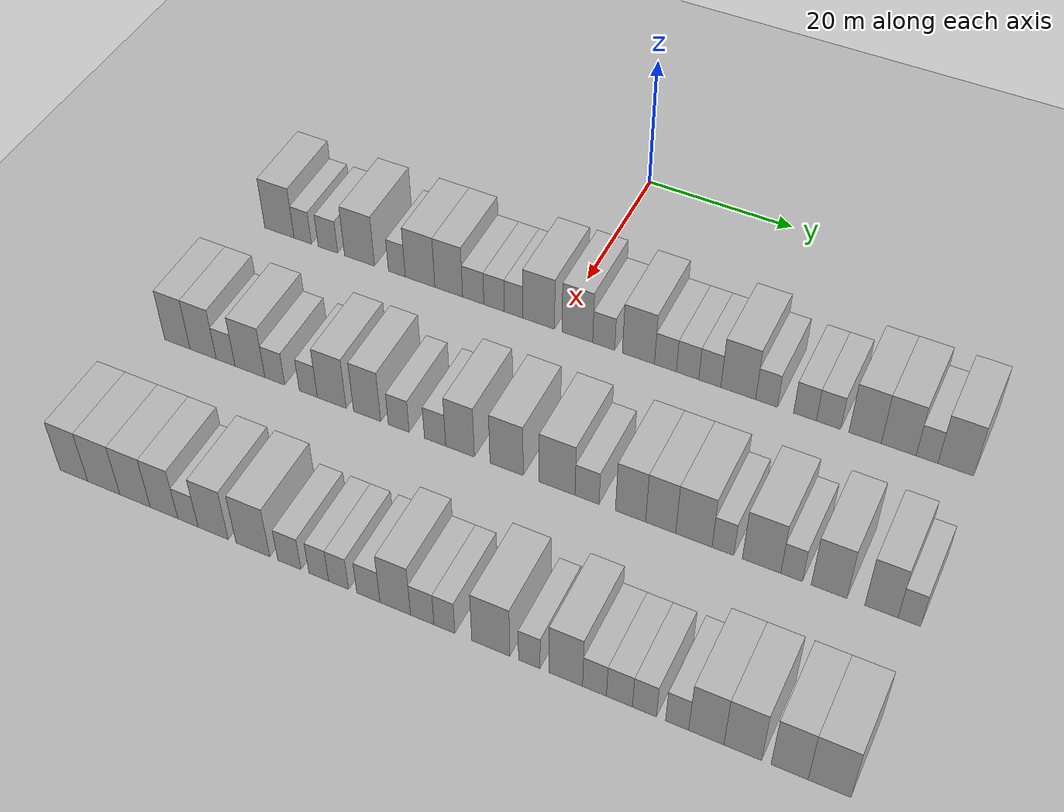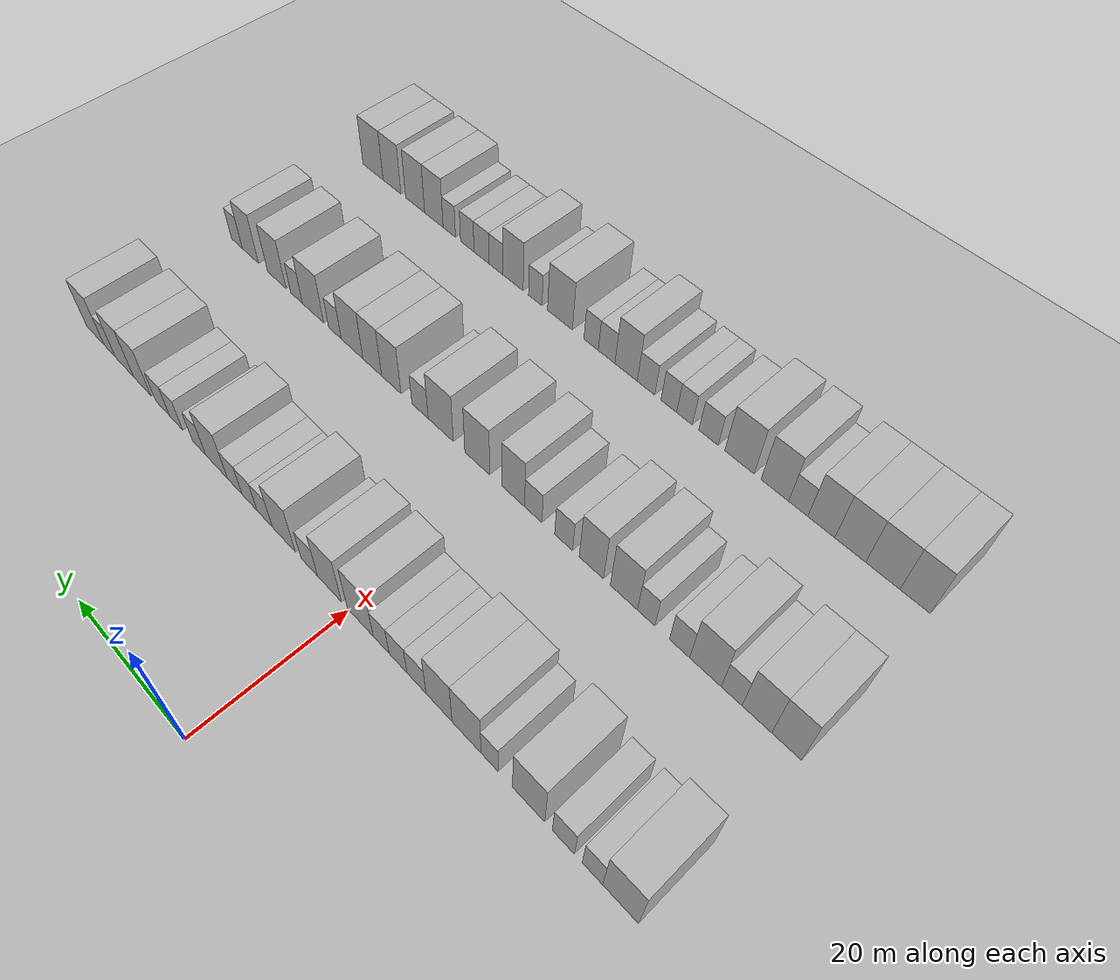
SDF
<sdf version="1.6">
 <world name="default">
  <include><name>ground_plane_1</name><uri>model://HANNAS_ground_plane</uri></include>
  <include>
   <name>ground_plane_2</name>
   <uri>model://HANNAS_ground_plane</uri>
   <pose>100 0 0  0 0 0</pose>
  </include>
  <model name="building_47">
   <static>1</static>
   <pose>25.0000 -39.0873 0 0.000000 0.000000 0.000000</pose>
   <link name="link">
    <pose>0 0 4.50 0 0 0</pose>
    <collision name="collision"><geometry><box><size>10.0000 4.3824 9.0000</size></box></geometry></collision>
    <visual name="visual">
     <cast_shadows>0</cast_shadows>
     <geometry><box><size>10.0000 4.3824 9.0000</size></box></geometry>
     <material>
      <script>
       <uri>model://HANNAS_wall/materials/scripts</uri>
       <uri>model://HANNAS_wall/materials/textures</uri>
       <name>vrc/HANNAS_wall</name>
      </script>
     </material>
    </visual>
   </link>
  </model>
  <model name="building_48">
   <static>1</static>
   <pose>25.0000 -35.6104 0 0.000000 0.000000 0.000000</pose>
   <link name="link">
    <pose>0 0 3.00 0 0 0</pose>
    <collision name="collision"><geometry><box><size>10.0000 2.5714 6.0000</size></box></geometry></collision>
    <visual name="visual">
     <cast_shadows>0</cast_shadows>
     <geometry><box><size>10.0000 2.5714 6.0000</size></box></geometry>
     <material>
      <script>
       <uri>model://HANNAS_wall/materials/scripts</uri>
       <uri>model://HANNAS_wall/materials/textures</uri>
       <name>vrc/HANNAS_wall</name>
      </script>
     </material>
    </visual>
   </link>
  </model>
  <model name="building_49">
   <static>1</static>
   <pose>25.0000 -31.8864 0 0.000000 0.000000 0.000000</pose>
   <link name="link">
    <pose>0 0 3.00 0 0 0</pose>
    <collision name="collision"><geometry><box><size>10.0000 2.8766 6.0000</size></box></geometry></collision>
    <visual name="visual">
     <cast_shadows>0</cast_shadows>
     <geometry><box><size>10.0000 2.8766 6.0000</size></box></geometry>
     <material>
      <script>
       <uri>model://HANNAS_wall/materials/scripts</uri>
       <uri>model://HANNAS_wall/materials/textures</uri>
       <name>vrc/HANNAS_wall</name>
      </script>
     </material>
    </visual>
   </link>
  </model>
  <model name="building_50">
   <static>1</static>
   <pose>25.0000 -27.2684 0 0.000000 0.000000 0.000000</pose>
   <link name="link">
    <pose>0 0 4.50 0 0 0</pose>
    <collision name="collision"><geometry><box><size>10.0000 4.3595 9.0000</size></box></geometry></collision>
    <visual name="visual">
     <cast_shadows>0</cast_shadows>
     <geometry><box><size>10.0000 4.3595 9.0000</size></box></geometry>
     <material>
      <script>
       <uri>model://HANNAS_wall/materials/scripts</uri>
       <uri>model://HANNAS_wall/materials/textures</uri>
       <name>vrc/HANNAS_wall</name>
      </script>
     </material>
    </visual>
   </link>
  </model>
  <model name="building_51">
   <static>1</static>
   <pose>25.0000 -21.8857 0 0.000000 0.000000 0.000000</pose>
   <link name="link">
    <pose>0 0 3.00 0 0 0</pose>
    <collision name="collision"><geometry><box><size>10.0000 2.4059 6.0000</size></box></geometry></collision>
    <visual name="visual">
     <cast_shadows>0</cast_shadows>
     <geometry><box><size>10.0000 2.4059 6.0000</size></box></geometry>
     <material>
      <script>
       <uri>model://HANNAS_wall/materials/scripts</uri>
       <uri>model://HANNAS_wall/materials/textures</uri>
       <name>vrc/HANNAS_wall</name>
      </script>
     </material>
    </visual>
   </link>
  </model>
  <model name="building_52">
   <static>1</static>
   <pose>25.0000 -18.5811 0 0.000000 0.000000 0.000000</pose>
   <link name="link">
    <pose>0 0 4.50 0 0 0</pose>
    <collision name="collision"><geometry><box><size>10.0000 4.2033 9.0000</size></box></geometry></collision>
    <visual name="visual">
     <cast_shadows>0</cast_shadows>
     <geometry><box><size>10.0000 4.2033 9.0000</size></box></geometry>
     <material>
      <script>
       <uri>model://HANNAS_wall/materials/scripts</uri>
       <uri>model://HANNAS_wall/materials/textures</uri>
       <name>vrc/HANNAS_wall</name>
      </script>
     </material>
    </visual>
   </link>
  </model>
  <model name="building_53">
   <static>1</static>
   <pose>25.0000 -14.5283 0 0.000000 0.000000 0.000000</pose>
   <link name="link">
    <pose>0 0 4.50 0 0 0</pose>
    <collision name="collision"><geometry><box><size>10.0000 3.9023 9.0000</size></box></geometry></collision>
    <visual name="visual">
     <cast_shadows>0</cast_shadows>
     <geometry><box><size>10.0000 3.9023 9.0000</size></box></geometry>
     <material>
      <script>
       <uri>model://HANNAS_wall/materials/scripts</uri>
       <uri>model://HANNAS_wall/materials/textures</uri>
       <name>vrc/HANNAS_wall</name>
      </script>
     </material>
    </visual>
   </link>
  </model>
  <model name="building_54">
   <static>1</static>
   <pose>25.0000 -11.1028 0 0.000000 0.000000 0.000000</pose>
   <link name="link">
    <pose>0 0 3.00 0 0 0</pose>
    <collision name="collision"><geometry><box><size>10.0000 2.9488 6.0000</size></box></geometry></collision>
    <visual name="visual">
     <cast_shadows>0</cast_shadows>
     <geometry><box><size>10.0000 2.9488 6.0000</size></box></geometry>
     <material>
      <script>
       <uri>model://HANNAS_wall/materials/scripts</uri>
       <uri>model://HANNAS_wall/materials/textures</uri>
       <name>vrc/HANNAS_wall</name>
      </script>
     </material>
    </visual>
   </link>
  </model>
  <model name="building_55">
   <static>1</static>
   <pose>25.0000 -8.2130 0 0.000000 0.000000 0.000000</pose>
   <link name="link">
    <pose>0 0 3.00 0 0 0</pose>
    <collision name="collision"><geometry><box><size>10.0000 2.8308 6.0000</size></box></geometry></collision>
    <visual name="visual">
     <cast_shadows>0</cast_shadows>
     <geometry><box><size>10.0000 2.8308 6.0000</size></box></geometry>
     <material>
      <script>
       <uri>model://HANNAS_wall/materials/scripts</uri>
       <uri>model://HANNAS_wall/materials/textures</uri>
       <name>vrc/HANNAS_wall</name>
      </script>
     </material>
    </visual>
   </link>
  </model>
  <model name="building_56">
   <static>1</static>
   <pose>25.0000 -5.5200 0 0.000000 0.000000 0.000000</pose>
   <link name="link">
    <pose>0 0 3.00 0 0 0</pose>
    <collision name="collision"><geometry><box><size>10.0000 2.5552 6.0000</size></box></geometry></collision>
    <visual name="visual">
     <cast_shadows>0</cast_shadows>
     <geometry><box><size>10.0000 2.5552 6.0000</size></box></geometry>
     <material>
      <script>
       <uri>model://HANNAS_wall/materials/scripts</uri>
       <uri>model://HANNAS_wall/materials/textures</uri>
       <name>vrc/HANNAS_wall</name>
      </script>
     </material>
    </visual>
   </link>
  </model>
  <model name="building_57">
   <static>1</static>
   <pose>25.0000 -2.1061 0 0.000000 0.000000 0.000000</pose>
   <link name="link">
    <pose>0 0 4.50 0 0 0</pose>
    <collision name="collision"><geometry><box><size>10.0000 4.2726 9.0000</size></box></geometry></collision>
    <visual name="visual">
     <cast_shadows>0</cast_shadows>
     <geometry><box><size>10.0000 4.2726 9.0000</size></box></geometry>
     <material>
      <script>
       <uri>model://HANNAS_wall/materials/scripts</uri>
       <uri>model://HANNAS_wall/materials/textures</uri>
       <name>vrc/HANNAS_wall</name>
      </script>
     </material>
    </visual>
   </link>
  </model>
  <model name="building_58">
   <static>1</static>
   <pose>25.0000 3.0901 0 0.000000 0.000000 0.000000</pose>
   <link name="link">
    <pose>0 0 4.50 0 0 0</pose>
    <collision name="collision"><geometry><box><size>10.0000 4.1197 9.0000</size></box></geometry></collision>
    <visual name="visual">
     <cast_shadows>0</cast_shadows>
     <geometry><box><size>10.0000 4.1197 9.0000</size></box></geometry>
     <material>
      <script>
       <uri>model://HANNAS_wall/materials/scripts</uri>
       <uri>model://HANNAS_wall/materials/textures</uri>
       <name>vrc/HANNAS_wall</name>
      </script>
     </material>
    </visual>
   </link>
  </model>
  <model name="building_59">
   <static>1</static>
   <pose>25.0000 6.6092 0 0.000000 0.000000 0.000000</pose>
   <link name="link">
    <pose>0 0 3.00 0 0 0</pose>
    <collision name="collision"><geometry><box><size>10.0000 2.9186 6.0000</size></box></geometry></collision>
    <visual name="visual">
     <cast_shadows>0</cast_shadows>
     <geometry><box><size>10.0000 2.9186 6.0000</size></box></geometry>
     <material>
      <script>
       <uri>model://HANNAS_wall/materials/scripts</uri>
       <uri>model://HANNAS_wall/materials/textures</uri>
       <name>vrc/HANNAS_wall</name>
      </script>
     </material>
    </visual>
   </link>
  </model>
  <model name="building_60">
   <static>1</static>
   <pose>25.0000 11.1703 0 0.000000 0.000000 0.000000</pose>
   <link name="link">
    <pose>0 0 4.50 0 0 0</pose>
    <collision name="collision"><geometry><box><size>10.0000 4.2036 9.0000</size></box></geometry></collision>
    <visual name="visual">
     <cast_shadows>0</cast_shadows>
     <geometry><box><size>10.0000 4.2036 9.0000</size></box></geometry>
     <material>
      <script>
       <uri>model://HANNAS_wall/materials/scripts</uri>
       <uri>model://HANNAS_wall/materials/textures</uri>
       <name>vrc/HANNAS_wall</name>
      </script>
     </material>
    </visual>
   </link>
  </model>
  <model name="building_61">
   <static>1</static>
   <pose>25.0000 14.6912 0 0.000000 0.000000 0.000000</pose>
   <link name="link">
    <pose>0 0 3.00 0 0 0</pose>
    <collision name="collision"><geometry><box><size>10.0000 2.8382 6.0000</size></box></geometry></collision>
    <visual name="visual">
     <cast_shadows>0</cast_shadows>
     <geometry><box><size>10.0000 2.8382 6.0000</size></box></geometry>
     <material>
      <script>
       <uri>model://HANNAS_wall/materials/scripts</uri>
       <uri>model://HANNAS_wall/materials/textures</uri>
       <name>vrc/HANNAS_wall</name>
      </script>
     </material>
    </visual>
   </link>
  </model>
  <model name="building_62">
   <static>1</static>
   <pose>25.0000 17.5471 0 0.000000 0.000000 0.000000</pose>
   <link name="link">
    <pose>0 0 3.00 0 0 0</pose>
    <collision name="collision"><geometry><box><size>10.0000 2.8736 6.0000</size></box></geometry></collision>
    <visual name="visual">
     <cast_shadows>0</cast_shadows>
     <geometry><box><size>10.0000 2.8736 6.0000</size></box></geometry>
     <material>
      <script>
       <uri>model://HANNAS_wall/materials/scripts</uri>
       <uri>model://HANNAS_wall/materials/textures</uri>
       <name>vrc/HANNAS_wall</name>
      </script>
     </material>
    </visual>
   </link>
  </model>
  <model name="building_63">
   <static>1</static>
   <pose>25.0000 20.3977 0 0.000000 0.000000 0.000000</pose>
   <link name="link">
    <pose>0 0 3.00 0 0 0</pose>
    <collision name="collision"><geometry><box><size>10.0000 2.8276 6.0000</size></box></geometry></collision>
    <visual name="visual">
     <cast_shadows>0</cast_shadows>
     <geometry><box><size>10.0000 2.8276 6.0000</size></box></geometry>
     <material>
      <script>
       <uri>model://HANNAS_wall/materials/scripts</uri>
       <uri>model://HANNAS_wall/materials/textures</uri>
       <name>vrc/HANNAS_wall</name>
      </script>
     </material>
    </visual>
   </link>
  </model>
  <model name="building_64">
   <static>1</static>
   <pose>25.0000 24.0078 0 0.000000 0.000000 0.000000</pose>
   <link name="link">
    <pose>0 0 4.50 0 0 0</pose>
    <collision name="collision"><geometry><box><size>10.0000 4.3927 9.0000</size></box></geometry></collision>
    <visual name="visual">
     <cast_shadows>0</cast_shadows>
     <geometry><box><size>10.0000 4.3927 9.0000</size></box></geometry>
     <material>
      <script>
       <uri>model://HANNAS_wall/materials/scripts</uri>
       <uri>model://HANNAS_wall/materials/textures</uri>
       <name>vrc/HANNAS_wall</name>
      </script>
     </material>
    </visual>
   </link>
  </model>
  <model name="building_65">
   <static>1</static>
   <pose>25.0000 27.5665 0 0.000000 0.000000 0.000000</pose>
   <link name="link">
    <pose>0 0 3.00 0 0 0</pose>
    <collision name="collision"><geometry><box><size>10.0000 2.7247 6.0000</size></box></geometry></collision>
    <visual name="visual">
     <cast_shadows>0</cast_shadows>
     <geometry><box><size>10.0000 2.7247 6.0000</size></box></geometry>
     <material>
      <script>
       <uri>model://HANNAS_wall/materials/scripts</uri>
       <uri>model://HANNAS_wall/materials/textures</uri>
       <name>vrc/HANNAS_wall</name>
      </script>
     </material>
    </visual>
   </link>
  </model>
  <model name="building_66">
   <static>1</static>
   <pose>25.0000 32.3372 0 0.000000 0.000000 0.000000</pose>
   <link name="link">
    <pose>0 0 3.00 0 0 0</pose>
    <collision name="collision"><geometry><box><size>10.0000 2.8166 6.0000</size></box></geometry></collision>
    <visual name="visual">
     <cast_shadows>0</cast_shadows>
     <geometry><box><size>10.0000 2.8166 6.0000</size></box></geometry>
     <material>
      <script>
       <uri>model://HANNAS_wall/materials/scripts</uri>
       <uri>model://HANNAS_wall/materials/textures</uri>
       <name>vrc/HANNAS_wall</name>
      </script>
     </material>
    </visual>
   </link>
  </model>
  <model name="building_67">
   <static>1</static>
   <pose>25.0000 35.2324 0 0.000000 0.000000 0.000000</pose>
   <link name="link">
    <pose>0 0 3.00 0 0 0</pose>
    <collision name="collision"><geometry><box><size>10.0000 2.9739 6.0000</size></box></geometry></collision>
    <visual name="visual">
     <cast_shadows>0</cast_shadows>
     <geometry><box><size>10.0000 2.9739 6.0000</size></box></geometry>
     <material>
      <script>
       <uri>model://HANNAS_wall/materials/scripts</uri>
       <uri>model://HANNAS_wall/materials/textures</uri>
       <name>vrc/HANNAS_wall</name>
      </script>
     </material>
    </visual>
   </link>
  </model>
  <model name="building_68">
   <static>1</static>
   <pose>25.0000 39.6657 0 0.000000 0.000000 0.000000</pose>
   <link name="link">
    <pose>0 0 4.50 0 0 0</pose>
    <collision name="collision"><geometry><box><size>10.0000 3.8926 9.0000</size></box></geometry></collision>
    <visual name="visual">
     <cast_shadows>0</cast_shadows>
     <geometry><box><size>10.0000 3.8926 9.0000</size></box></geometry>
     <material>
      <script>
       <uri>model://HANNAS_wall/materials/scripts</uri>
       <uri>model://HANNAS_wall/materials/textures</uri>
       <name>vrc/HANNAS_wall</name>
      </script>
     </material>
    </visual>
   </link>
  </model>
  <model name="building_69">
   <static>1</static>
   <pose>25.0000 43.6970 0 0.000000 0.000000 0.000000</pose>
   <link name="link">
    <pose>0 0 4.50 0 0 0</pose>
    <collision name="collision"><geometry><box><size>10.0000 4.1700 9.0000</size></box></geometry></collision>
    <visual name="visual">
     <cast_shadows>0</cast_shadows>
     <geometry><box><size>10.0000 4.1700 9.0000</size></box></geometry>
     <material>
      <script>
       <uri>model://HANNAS_wall/materials/scripts</uri>
       <uri>model://HANNAS_wall/materials/textures</uri>
       <name>vrc/HANNAS_wall</name>
      </script>
     </material>
    </visual>
   </link>
  </model>
  <model name="building_70">
   <static>1</static>
   <pose>25.0000 47.0680 0 0.000000 0.000000 0.000000</pose>
   <link name="link">
    <pose>0 0 3.00 0 0 0</pose>
    <collision name="collision"><geometry><box><size>10.0000 2.5720 6.0000</size></box></geometry></collision>
    <visual name="visual">
     <cast_shadows>0</cast_shadows>
     <geometry><box><size>10.0000 2.5720 6.0000</size></box></geometry>
     <material>
      <script>
       <uri>model://HANNAS_wall/materials/scripts</uri>
       <uri>model://HANNAS_wall/materials/textures</uri>
       <name>vrc/HANNAS_wall</name>
      </script>
     </material>
    </visual>
   </link>
  </model>
  <model name="building_71">
   <static>1</static>
   <pose>25.0000 50.4445 0 0.000000 0.000000 0.000000</pose>
   <link name="link">
    <pose>0 0 4.50 0 0 0</pose>
    <collision name="collision"><geometry><box><size>10.0000 4.1810 9.0000</size></box></geometry></collision>
    <visual name="visual">
     <cast_shadows>0</cast_shadows>
     <geometry><box><size>10.0000 4.1810 9.0000</size></box></geometry>
     <material>
      <script>
       <uri>model://HANNAS_wall/materials/scripts</uri>
       <uri>model://HANNAS_wall/materials/textures</uri>
       <name>vrc/HANNAS_wall</name>
      </script>
     </material>
    </visual>
   </link>
  </model>
  <model name="building_174">
   <static>1</static>
   <pose>47.0000 -40.1279 0 0.000000 0.000000 0.000000</pose>
   <link name="link">
    <pose>0 0 4.50 0 0 0</pose>
    <collision name="collision"><geometry><box><size>10.0000 3.6293 9.0000</size></box></geometry></collision>
    <visual name="visual">
     <cast_shadows>0</cast_shadows>
     <geometry><box><size>10.0000 3.6293 9.0000</size></box></geometry>
     <material>
      <script>
       <uri>model://HANNAS_wall/materials/scripts</uri>
       <uri>model://HANNAS_wall/materials/textures</uri>
       <name>vrc/HANNAS_wall</name>
      </script>
     </material>
    </visual>
   </link>
  </model>
  <model name="building_175">
   <static>1</static>
   <pose>47.0000 -36.4515 0 0.000000 0.000000 0.000000</pose>
   <link name="link">
    <pose>0 0 4.50 0 0 0</pose>
    <collision name="collision"><geometry><box><size>10.0000 3.7234 9.0000</size></box></geometry></collision>
    <visual name="visual">
     <cast_shadows>0</cast_shadows>
     <geometry><box><size>10.0000 3.7234 9.0000</size></box></geometry>
     <material>
      <script>
       <uri>model://HANNAS_wall/materials/scripts</uri>
       <uri>model://HANNAS_wall/materials/textures</uri>
       <name>vrc/HANNAS_wall</name>
      </script>
     </material>
    </visual>
   </link>
  </model>
  <model name="building_176">
   <static>1</static>
   <pose>47.0000 -33.2596 0 0.000000 0.000000 0.000000</pose>
   <link name="link">
    <pose>0 0 3.00 0 0 0</pose>
    <collision name="collision"><geometry><box><size>10.0000 2.6604 6.0000</size></box></geometry></collision>
    <visual name="visual">
     <cast_shadows>0</cast_shadows>
     <geometry><box><size>10.0000 2.6604 6.0000</size></box></geometry>
     <material>
      <script>
       <uri>model://HANNAS_wall/materials/scripts</uri>
       <uri>model://HANNAS_wall/materials/textures</uri>
       <name>vrc/HANNAS_wall</name>
      </script>
     </material>
    </visual>
   </link>
  </model>
  <model name="building_177">
   <static>1</static>
   <pose>47.0000 -29.8377 0 0.000000 0.000000 0.000000</pose>
   <link name="link">
    <pose>0 0 4.50 0 0 0</pose>
    <collision name="collision"><geometry><box><size>10.0000 4.1832 9.0000</size></box></geometry></collision>
    <visual name="visual">
     <cast_shadows>0</cast_shadows>
     <geometry><box><size>10.0000 4.1832 9.0000</size></box></geometry>
     <material>
      <script>
       <uri>model://HANNAS_wall/materials/scripts</uri>
       <uri>model://HANNAS_wall/materials/textures</uri>
       <name>vrc/HANNAS_wall</name>
      </script>
     </material>
    </visual>
   </link>
  </model>
  <model name="building_178">
   <static>1</static>
   <pose>47.0000 -26.3649 0 0.000000 0.000000 0.000000</pose>
   <link name="link">
    <pose>0 0 3.00 0 0 0</pose>
    <collision name="collision"><geometry><box><size>10.0000 2.7625 6.0000</size></box></geometry></collision>
    <visual name="visual">
     <cast_shadows>0</cast_shadows>
     <geometry><box><size>10.0000 2.7625 6.0000</size></box></geometry>
     <material>
      <script>
       <uri>model://HANNAS_wall/materials/scripts</uri>
       <uri>model://HANNAS_wall/materials/textures</uri>
       <name>vrc/HANNAS_wall</name>
      </script>
     </material>
    </visual>
   </link>
  </model>
  <model name="building_179">
   <static>1</static>
   <pose>47.0000 -21.7534 0 0.000000 0.000000 0.000000</pose>
   <link name="link">
    <pose>0 0 3.00 0 0 0</pose>
    <collision name="collision"><geometry><box><size>10.0000 2.4605 6.0000</size></box></geometry></collision>
    <visual name="visual">
     <cast_shadows>0</cast_shadows>
     <geometry><box><size>10.0000 2.4605 6.0000</size></box></geometry>
     <material>
      <script>
       <uri>model://HANNAS_wall/materials/scripts</uri>
       <uri>model://HANNAS_wall/materials/textures</uri>
       <name>vrc/HANNAS_wall</name>
      </script>
     </material>
    </visual>
   </link>
  </model>
  <model name="building_180">
   <static>1</static>
   <pose>47.0000 -18.5714 0 0.000000 0.000000 0.000000</pose>
   <link name="link">
    <pose>0 0 4.50 0 0 0</pose>
    <collision name="collision"><geometry><box><size>10.0000 3.9035 9.0000</size></box></geometry></collision>
    <visual name="visual">
     <cast_shadows>0</cast_shadows>
     <geometry><box><size>10.0000 3.9035 9.0000</size></box></geometry>
     <material>
      <script>
       <uri>model://HANNAS_wall/materials/scripts</uri>
       <uri>model://HANNAS_wall/materials/textures</uri>
       <name>vrc/HANNAS_wall</name>
      </script>
     </material>
    </visual>
   </link>
  </model>
  <model name="building_181">
   <static>1</static>
   <pose>47.0000 -13.8048 0 0.000000 0.000000 0.000000</pose>
   <link name="link">
    <pose>0 0 4.50 0 0 0</pose>
    <collision name="collision"><geometry><box><size>10.0000 3.6299 9.0000</size></box></geometry></collision>
    <visual name="visual">
     <cast_shadows>0</cast_shadows>
     <geometry><box><size>10.0000 3.6299 9.0000</size></box></geometry>
     <material>
      <script>
       <uri>model://HANNAS_wall/materials/scripts</uri>
       <uri>model://HANNAS_wall/materials/textures</uri>
       <name>vrc/HANNAS_wall</name>
      </script>
     </material>
    </visual>
   </link>
  </model>
  <model name="building_182">
   <static>1</static>
   <pose>47.0000 -9.6112 0 0.000000 0.000000 0.000000</pose>
   <link name="link">
    <pose>0 0 3.00 0 0 0</pose>
    <collision name="collision"><geometry><box><size>10.0000 2.7573 6.0000</size></box></geometry></collision>
    <visual name="visual">
     <cast_shadows>0</cast_shadows>
     <geometry><box><size>10.0000 2.7573 6.0000</size></box></geometry>
     <material>
      <script>
       <uri>model://HANNAS_wall/materials/scripts</uri>
       <uri>model://HANNAS_wall/materials/textures</uri>
       <name>vrc/HANNAS_wall</name>
      </script>
     </material>
    </visual>
   </link>
  </model>
  <model name="building_183">
   <static>1</static>
   <pose>47.0000 -4.8487 0 0.000000 0.000000 0.000000</pose>
   <link name="link">
    <pose>0 0 3.00 0 0 0</pose>
    <collision name="collision"><geometry><box><size>10.0000 2.7678 6.0000</size></box></geometry></collision>
    <visual name="visual">
     <cast_shadows>0</cast_shadows>
     <geometry><box><size>10.0000 2.7678 6.0000</size></box></geometry>
     <material>
      <script>
       <uri>model://HANNAS_wall/materials/scripts</uri>
       <uri>model://HANNAS_wall/materials/textures</uri>
       <name>vrc/HANNAS_wall</name>
      </script>
     </material>
    </visual>
   </link>
  </model>
  <model name="building_184">
   <static>1</static>
   <pose>47.0000 -1.6145 0 0.000000 0.000000 0.000000</pose>
   <link name="link">
    <pose>0 0 4.50 0 0 0</pose>
    <collision name="collision"><geometry><box><size>10.0000 3.7007 9.0000</size></box></geometry></collision>
    <visual name="visual">
     <cast_shadows>0</cast_shadows>
     <geometry><box><size>10.0000 3.7007 9.0000</size></box></geometry>
     <material>
      <script>
       <uri>model://HANNAS_wall/materials/scripts</uri>
       <uri>model://HANNAS_wall/materials/textures</uri>
       <name>vrc/HANNAS_wall</name>
      </script>
     </material>
    </visual>
   </link>
  </model>
  <model name="building_185">
   <static>1</static>
   <pose>47.0000 4.3409 0 0.000000 0.000000 0.000000</pose>
   <link name="link">
    <pose>0 0 4.50 0 0 0</pose>
    <collision name="collision"><geometry><box><size>10.0000 4.2100 9.0000</size></box></geometry></collision>
    <visual name="visual">
     <cast_shadows>0</cast_shadows>
     <geometry><box><size>10.0000 4.2100 9.0000</size></box></geometry>
     <material>
      <script>
       <uri>model://HANNAS_wall/materials/scripts</uri>
       <uri>model://HANNAS_wall/materials/textures</uri>
       <name>vrc/HANNAS_wall</name>
      </script>
     </material>
    </visual>
   </link>
  </model>
  <model name="building_186">
   <static>1</static>
   <pose>47.0000 10.6716 0 0.000000 0.000000 0.000000</pose>
   <link name="link">
    <pose>0 0 4.50 0 0 0</pose>
    <collision name="collision"><geometry><box><size>10.0000 4.4513 9.0000</size></box></geometry></collision>
    <visual name="visual">
     <cast_shadows>0</cast_shadows>
     <geometry><box><size>10.0000 4.4513 9.0000</size></box></geometry>
     <material>
      <script>
       <uri>model://HANNAS_wall/materials/scripts</uri>
       <uri>model://HANNAS_wall/materials/textures</uri>
       <name>vrc/HANNAS_wall</name>
      </script>
     </material>
    </visual>
   </link>
  </model>
  <model name="building_187">
   <static>1</static>
   <pose>47.0000 14.3800 0 0.000000 0.000000 0.000000</pose>
   <link name="link">
    <pose>0 0 3.00 0 0 0</pose>
    <collision name="collision"><geometry><box><size>10.0000 2.9654 6.0000</size></box></geometry></collision>
    <visual name="visual">
     <cast_shadows>0</cast_shadows>
     <geometry><box><size>10.0000 2.9654 6.0000</size></box></geometry>
     <material>
      <script>
       <uri>model://HANNAS_wall/materials/scripts</uri>
       <uri>model://HANNAS_wall/materials/textures</uri>
       <name>vrc/HANNAS_wall</name>
      </script>
     </material>
    </visual>
   </link>
  </model>
  <model name="building_188">
   <static>1</static>
   <pose>47.0000 19.6873 0 0.000000 0.000000 0.000000</pose>
   <link name="link">
    <pose>0 0 4.50 0 0 0</pose>
    <collision name="collision"><geometry><box><size>10.0000 3.6493 9.0000</size></box></geometry></collision>
    <visual name="visual">
     <cast_shadows>0</cast_shadows>
     <geometry><box><size>10.0000 3.6493 9.0000</size></box></geometry>
     <material>
      <script>
       <uri>model://HANNAS_wall/materials/scripts</uri>
       <uri>model://HANNAS_wall/materials/textures</uri>
       <name>vrc/HANNAS_wall</name>
      </script>
     </material>
    </visual>
   </link>
  </model>
  <model name="building_189">
   <static>1</static>
   <pose>47.0000 23.3155 0 0.000000 0.000000 0.000000</pose>
   <link name="link">
    <pose>0 0 4.50 0 0 0</pose>
    <collision name="collision"><geometry><box><size>10.0000 3.6070 9.0000</size></box></geometry></collision>
    <visual name="visual">
     <cast_shadows>0</cast_shadows>
     <geometry><box><size>10.0000 3.6070 9.0000</size></box></geometry>
     <material>
      <script>
       <uri>model://HANNAS_wall/materials/scripts</uri>
       <uri>model://HANNAS_wall/materials/textures</uri>
       <name>vrc/HANNAS_wall</name>
      </script>
     </material>
    </visual>
   </link>
  </model>
  <model name="building_190">
   <static>1</static>
   <pose>47.0000 27.2748 0 0.000000 0.000000 0.000000</pose>
   <link name="link">
    <pose>0 0 4.50 0 0 0</pose>
    <collision name="collision"><geometry><box><size>10.0000 4.3116 9.0000</size></box></geometry></collision>
    <visual name="visual">
     <cast_shadows>0</cast_shadows>
     <geometry><box><size>10.0000 4.3116 9.0000</size></box></geometry>
     <material>
      <script>
       <uri>model://HANNAS_wall/materials/scripts</uri>
       <uri>model://HANNAS_wall/materials/textures</uri>
       <name>vrc/HANNAS_wall</name>
      </script>
     </material>
    </visual>
   </link>
  </model>
  <model name="building_191">
   <static>1</static>
   <pose>47.0000 30.6978 0 0.000000 0.000000 0.000000</pose>
   <link name="link">
    <pose>0 0 3.00 0 0 0</pose>
    <collision name="collision"><geometry><box><size>10.0000 2.5344 6.0000</size></box></geometry></collision>
    <visual name="visual">
     <cast_shadows>0</cast_shadows>
     <geometry><box><size>10.0000 2.5344 6.0000</size></box></geometry>
     <material>
      <script>
       <uri>model://HANNAS_wall/materials/scripts</uri>
       <uri>model://HANNAS_wall/materials/textures</uri>
       <name>vrc/HANNAS_wall</name>
      </script>
     </material>
    </visual>
   </link>
  </model>
  <model name="building_192">
   <static>1</static>
   <pose>47.0000 35.1842 0 0.000000 0.000000 0.000000</pose>
   <link name="link">
    <pose>0 0 4.50 0 0 0</pose>
    <collision name="collision"><geometry><box><size>10.0000 4.4385 9.0000</size></box></geometry></collision>
    <visual name="visual">
     <cast_shadows>0</cast_shadows>
     <geometry><box><size>10.0000 4.4385 9.0000</size></box></geometry>
     <material>
      <script>
       <uri>model://HANNAS_wall/materials/scripts</uri>
       <uri>model://HANNAS_wall/materials/textures</uri>
       <name>vrc/HANNAS_wall</name>
      </script>
     </material>
    </visual>
   </link>
  </model>
  <model name="building_193">
   <static>1</static>
   <pose>47.0000 38.6431 0 0.000000 0.000000 0.000000</pose>
   <link name="link">
    <pose>0 0 3.00 0 0 0</pose>
    <collision name="collision"><geometry><box><size>10.0000 2.4792 6.0000</size></box></geometry></collision>
    <visual name="visual">
     <cast_shadows>0</cast_shadows>
     <geometry><box><size>10.0000 2.4792 6.0000</size></box></geometry>
     <material>
      <script>
       <uri>model://HANNAS_wall/materials/scripts</uri>
       <uri>model://HANNAS_wall/materials/textures</uri>
       <name>vrc/HANNAS_wall</name>
      </script>
     </material>
    </visual>
   </link>
  </model>
  <model name="building_194">
   <static>1</static>
   <pose>47.0000 42.8959 0 0.000000 0.000000 0.000000</pose>
   <link name="link">
    <pose>0 0 4.50 0 0 0</pose>
    <collision name="collision"><geometry><box><size>10.0000 4.0265 9.0000</size></box></geometry></collision>
    <visual name="visual">
     <cast_shadows>0</cast_shadows>
     <geometry><box><size>10.0000 4.0265 9.0000</size></box></geometry>
     <material>
      <script>
       <uri>model://HANNAS_wall/materials/scripts</uri>
       <uri>model://HANNAS_wall/materials/textures</uri>
       <name>vrc/HANNAS_wall</name>
      </script>
     </material>
    </visual>
   </link>
  </model>
  <model name="building_195">
   <static>1</static>
   <pose>47.0000 48.7505 0 0.000000 0.000000 0.000000</pose>
   <link name="link">
    <pose>0 0 4.50 0 0 0</pose>
    <collision name="collision"><geometry><box><size>10.0000 3.6827 9.0000</size></box></geometry></collision>
    <visual name="visual">
     <cast_shadows>0</cast_shadows>
     <geometry><box><size>10.0000 3.6827 9.0000</size></box></geometry>
     <material>
      <script>
       <uri>model://HANNAS_wall/materials/scripts</uri>
       <uri>model://HANNAS_wall/materials/textures</uri>
       <name>vrc/HANNAS_wall</name>
      </script>
     </material>
    </visual>
   </link>
  </model>
  <model name="building_196">
   <static>1</static>
   <pose>47.0000 51.8298 0 0.000000 0.000000 0.000000</pose>
   <link name="link">
    <pose>0 0 3.00 0 0 0</pose>
    <collision name="collision"><geometry><box><size>10.0000 2.4759 6.0000</size></box></geometry></collision>
    <visual name="visual">
     <cast_shadows>0</cast_shadows>
     <geometry><box><size>10.0000 2.4759 6.0000</size></box></geometry>
     <material>
      <script>
       <uri>model://HANNAS_wall/materials/scripts</uri>
       <uri>model://HANNAS_wall/materials/textures</uri>
       <name>vrc/HANNAS_wall</name>
      </script>
     </material>
    </visual>
   </link>
  </model>
  <model name="building_296">
   <static>1</static>
   <pose>69.0000 -39.5055 0 0.000000 0.000000 0.000000</pose>
   <link name="link">
    <pose>0 0 4.50 0 0 0</pose>
    <collision name="collision"><geometry><box><size>10.0000 3.7707 9.0000</size></box></geometry></collision>
    <visual name="visual">
     <cast_shadows>0</cast_shadows>
     <geometry><box><size>10.0000 3.7707 9.0000</size></box></geometry>
     <material>
      <script>
       <uri>model://HANNAS_wall/materials/scripts</uri>
       <uri>model://HANNAS_wall/materials/textures</uri>
       <name>vrc/HANNAS_wall</name>
      </script>
     </material>
    </visual>
   </link>
  </model>
  <model name="building_297">
   <static>1</static>
   <pose>69.0000 -35.4348 0 0.000000 0.000000 0.000000</pose>
   <link name="link">
    <pose>0 0 4.50 0 0 0</pose>
    <collision name="collision"><geometry><box><size>10.0000 4.3708 9.0000</size></box></geometry></collision>
    <visual name="visual">
     <cast_shadows>0</cast_shadows>
     <geometry><box><size>10.0000 4.3708 9.0000</size></box></geometry>
     <material>
      <script>
       <uri>model://HANNAS_wall/materials/scripts</uri>
       <uri>model://HANNAS_wall/materials/textures</uri>
       <name>vrc/HANNAS_wall</name>
      </script>
     </material>
    </visual>
   </link>
  </model>
  <model name="building_298">
   <static>1</static>
   <pose>69.0000 -31.2043 0 0.000000 0.000000 0.000000</pose>
   <link name="link">
    <pose>0 0 4.50 0 0 0</pose>
    <collision name="collision"><geometry><box><size>10.0000 4.0900 9.0000</size></box></geometry></collision>
    <visual name="visual">
     <cast_shadows>0</cast_shadows>
     <geometry><box><size>10.0000 4.0900 9.0000</size></box></geometry>
     <material>
      <script>
       <uri>model://HANNAS_wall/materials/scripts</uri>
       <uri>model://HANNAS_wall/materials/textures</uri>
       <name>vrc/HANNAS_wall</name>
      </script>
     </material>
    </visual>
   </link>
  </model>
  <model name="building_299">
   <static>1</static>
   <pose>69.0000 -27.3299 0 0.000000 0.000000 0.000000</pose>
   <link name="link">
    <pose>0 0 4.50 0 0 0</pose>
    <collision name="collision"><geometry><box><size>10.0000 3.6589 9.0000</size></box></geometry></collision>
    <visual name="visual">
     <cast_shadows>0</cast_shadows>
     <geometry><box><size>10.0000 3.6589 9.0000</size></box></geometry>
     <material>
      <script>
       <uri>model://HANNAS_wall/materials/scripts</uri>
       <uri>model://HANNAS_wall/materials/textures</uri>
       <name>vrc/HANNAS_wall</name>
      </script>
     </material>
    </visual>
   </link>
  </model>
  <model name="building_300">
   <static>1</static>
   <pose>69.0000 -24.1709 0 0.000000 0.000000 0.000000</pose>
   <link name="link">
    <pose>0 0 3.00 0 0 0</pose>
    <collision name="collision"><geometry><box><size>10.0000 2.6590 6.0000</size></box></geometry></collision>
    <visual name="visual">
     <cast_shadows>0</cast_shadows>
     <geometry><box><size>10.0000 2.6590 6.0000</size></box></geometry>
     <material>
      <script>
       <uri>model://HANNAS_wall/materials/scripts</uri>
       <uri>model://HANNAS_wall/materials/textures</uri>
       <name>vrc/HANNAS_wall</name>
      </script>
     </material>
    </visual>
   </link>
  </model>
  <model name="building_301">
   <static>1</static>
   <pose>69.0000 -20.8824 0 0.000000 0.000000 0.000000</pose>
   <link name="link">
    <pose>0 0 4.50 0 0 0</pose>
    <collision name="collision"><geometry><box><size>10.0000 3.9180 9.0000</size></box></geometry></collision>
    <visual name="visual">
     <cast_shadows>0</cast_shadows>
     <geometry><box><size>10.0000 3.9180 9.0000</size></box></geometry>
     <material>
      <script>
       <uri>model://HANNAS_wall/materials/scripts</uri>
       <uri>model://HANNAS_wall/materials/textures</uri>
       <name>vrc/HANNAS_wall</name>
      </script>
     </material>
    </visual>
   </link>
  </model>
  <model name="building_302">
   <static>1</static>
   <pose>69.0000 -15.7556 0 0.000000 0.000000 0.000000</pose>
   <link name="link">
    <pose>0 0 4.50 0 0 0</pose>
    <collision name="collision"><geometry><box><size>10.0000 4.3355 9.0000</size></box></geometry></collision>
    <visual name="visual">
     <cast_shadows>0</cast_shadows>
     <geometry><box><size>10.0000 4.3355 9.0000</size></box></geometry>
     <material>
      <script>
       <uri>model://HANNAS_wall/materials/scripts</uri>
       <uri>model://HANNAS_wall/materials/textures</uri>
       <name>vrc/HANNAS_wall</name>
      </script>
     </material>
    </visual>
   </link>
  </model>
  <model name="building_303">
   <static>1</static>
   <pose>69.0000 -11.1206 0 0.000000 0.000000 0.000000</pose>
   <link name="link">
    <pose>0 0 3.00 0 0 0</pose>
    <collision name="collision"><geometry><box><size>10.0000 2.9345 6.0000</size></box></geometry></collision>
    <visual name="visual">
     <cast_shadows>0</cast_shadows>
     <geometry><box><size>10.0000 2.9345 6.0000</size></box></geometry>
     <material>
      <script>
       <uri>model://HANNAS_wall/materials/scripts</uri>
       <uri>model://HANNAS_wall/materials/textures</uri>
       <name>vrc/HANNAS_wall</name>
      </script>
     </material>
    </visual>
   </link>
  </model>
  <model name="building_304">
   <static>1</static>
   <pose>69.0000 -7.4273 0 0.000000 0.000000 0.000000</pose>
   <link name="link">
    <pose>0 0 3.00 0 0 0</pose>
    <collision name="collision"><geometry><box><size>10.0000 2.4521 6.0000</size></box></geometry></collision>
    <visual name="visual">
     <cast_shadows>0</cast_shadows>
     <geometry><box><size>10.0000 2.4521 6.0000</size></box></geometry>
     <material>
      <script>
       <uri>model://HANNAS_wall/materials/scripts</uri>
       <uri>model://HANNAS_wall/materials/textures</uri>
       <name>vrc/HANNAS_wall</name>
      </script>
     </material>
    </visual>
   </link>
  </model>
  <model name="building_305">
   <static>1</static>
   <pose>69.0000 -4.9618 0 0.000000 0.000000 0.000000</pose>
   <link name="link">
    <pose>0 0 3.00 0 0 0</pose>
    <collision name="collision"><geometry><box><size>10.0000 2.4788 6.0000</size></box></geometry></collision>
    <visual name="visual">
     <cast_shadows>0</cast_shadows>
     <geometry><box><size>10.0000 2.4788 6.0000</size></box></geometry>
     <material>
      <script>
       <uri>model://HANNAS_wall/materials/scripts</uri>
       <uri>model://HANNAS_wall/materials/textures</uri>
       <name>vrc/HANNAS_wall</name>
      </script>
     </material>
    </visual>
   </link>
  </model>
  <model name="building_306">
   <static>1</static>
   <pose>69.0000 -1.3029 0 0.000000 0.000000 0.000000</pose>
   <link name="link">
    <pose>0 0 3.00 0 0 0</pose>
    <collision name="collision"><geometry><box><size>10.0000 2.8390 6.0000</size></box></geometry></collision>
    <visual name="visual">
     <cast_shadows>0</cast_shadows>
     <geometry><box><size>10.0000 2.8390 6.0000</size></box></geometry>
     <material>
      <script>
       <uri>model://HANNAS_wall/materials/scripts</uri>
       <uri>model://HANNAS_wall/materials/textures</uri>
       <name>vrc/HANNAS_wall</name>
      </script>
     </material>
    </visual>
   </link>
  </model>
  <model name="building_307">
   <static>1</static>
   <pose>69.0000 1.9670 0 0.000000 0.000000 0.000000</pose>
   <link name="link">
    <pose>0 0 4.50 0 0 0</pose>
    <collision name="collision"><geometry><box><size>10.0000 3.7007 9.0000</size></box></geometry></collision>
    <visual name="visual">
     <cast_shadows>0</cast_shadows>
     <geometry><box><size>10.0000 3.7007 9.0000</size></box></geometry>
     <material>
      <script>
       <uri>model://HANNAS_wall/materials/scripts</uri>
       <uri>model://HANNAS_wall/materials/textures</uri>
       <name>vrc/HANNAS_wall</name>
      </script>
     </material>
    </visual>
   </link>
  </model>
  <model name="building_308">
   <static>1</static>
   <pose>69.0000 5.2252 0 0.000000 0.000000 0.000000</pose>
   <link name="link">
    <pose>0 0 3.00 0 0 0</pose>
    <collision name="collision"><geometry><box><size>10.0000 2.8155 6.0000</size></box></geometry></collision>
    <visual name="visual">
     <cast_shadows>0</cast_shadows>
     <geometry><box><size>10.0000 2.8155 6.0000</size></box></geometry>
     <material>
      <script>
       <uri>model://HANNAS_wall/materials/scripts</uri>
       <uri>model://HANNAS_wall/materials/textures</uri>
       <name>vrc/HANNAS_wall</name>
      </script>
     </material>
    </visual>
   </link>
  </model>
  <model name="building_309">
   <static>1</static>
   <pose>69.0000 7.8712 0 0.000000 0.000000 0.000000</pose>
   <link name="link">
    <pose>0 0 3.00 0 0 0</pose>
    <collision name="collision"><geometry><box><size>10.0000 2.4766 6.0000</size></box></geometry></collision>
    <visual name="visual">
     <cast_shadows>0</cast_shadows>
     <geometry><box><size>10.0000 2.4766 6.0000</size></box></geometry>
     <material>
      <script>
       <uri>model://HANNAS_wall/materials/scripts</uri>
       <uri>model://HANNAS_wall/materials/textures</uri>
       <name>vrc/HANNAS_wall</name>
      </script>
     </material>
    </visual>
   </link>
  </model>
  <model name="building_310">
   <static>1</static>
   <pose>69.0000 13.3340 0 0.000000 0.000000 0.000000</pose>
   <link name="link">
    <pose>0 0 4.50 0 0 0</pose>
    <collision name="collision"><geometry><box><size>10.0000 4.4489 9.0000</size></box></geometry></collision>
    <visual name="visual">
     <cast_shadows>0</cast_shadows>
     <geometry><box><size>10.0000 4.4489 9.0000</size></box></geometry>
     <material>
      <script>
       <uri>model://HANNAS_wall/materials/scripts</uri>
       <uri>model://HANNAS_wall/materials/textures</uri>
       <name>vrc/HANNAS_wall</name>
      </script>
     </material>
    </visual>
   </link>
  </model>
  <model name="building_311">
   <static>1</static>
   <pose>69.0000 17.7973 0 0.000000 0.000000 0.000000</pose>
   <link name="link">
    <pose>0 0 3.00 0 0 0</pose>
    <collision name="collision"><geometry><box><size>10.0000 2.4777 6.0000</size></box></geometry></collision>
    <visual name="visual">
     <cast_shadows>0</cast_shadows>
     <geometry><box><size>10.0000 2.4777 6.0000</size></box></geometry>
     <material>
      <script>
       <uri>model://HANNAS_wall/materials/scripts</uri>
       <uri>model://HANNAS_wall/materials/textures</uri>
       <name>vrc/HANNAS_wall</name>
      </script>
     </material>
    </visual>
   </link>
  </model>
  <model name="building_312">
   <static>1</static>
   <pose>69.0000 21.9535 0 0.000000 0.000000 0.000000</pose>
   <link name="link">
    <pose>0 0 4.50 0 0 0</pose>
    <collision name="collision"><geometry><box><size>10.0000 3.8347 9.0000</size></box></geometry></collision>
    <visual name="visual">
     <cast_shadows>0</cast_shadows>
     <geometry><box><size>10.0000 3.8347 9.0000</size></box></geometry>
     <material>
      <script>
       <uri>model://HANNAS_wall/materials/scripts</uri>
       <uri>model://HANNAS_wall/materials/textures</uri>
       <name>vrc/HANNAS_wall</name>
      </script>
     </material>
    </visual>
   </link>
  </model>
  <model name="building_313">
   <static>1</static>
   <pose>69.0000 25.2124 0 0.000000 0.000000 0.000000</pose>
   <link name="link">
    <pose>0 0 3.00 0 0 0</pose>
    <collision name="collision"><geometry><box><size>10.0000 2.6829 6.0000</size></box></geometry></collision>
    <visual name="visual">
     <cast_shadows>0</cast_shadows>
     <geometry><box><size>10.0000 2.6829 6.0000</size></box></geometry>
     <material>
      <script>
       <uri>model://HANNAS_wall/materials/scripts</uri>
       <uri>model://HANNAS_wall/materials/textures</uri>
       <name>vrc/HANNAS_wall</name>
      </script>
     </material>
    </visual>
   </link>
  </model>
  <model name="building_314">
   <static>1</static>
   <pose>69.0000 27.9999 0 0.000000 0.000000 0.000000</pose>
   <link name="link">
    <pose>0 0 3.00 0 0 0</pose>
    <collision name="collision"><geometry><box><size>10.0000 2.8921 6.0000</size></box></geometry></collision>
    <visual name="visual">
     <cast_shadows>0</cast_shadows>
     <geometry><box><size>10.0000 2.8921 6.0000</size></box></geometry>
     <material>
      <script>
       <uri>model://HANNAS_wall/materials/scripts</uri>
       <uri>model://HANNAS_wall/materials/textures</uri>
       <name>vrc/HANNAS_wall</name>
      </script>
     </material>
    </visual>
   </link>
  </model>
  <model name="building_315">
   <static>1</static>
   <pose>69.0000 30.7774 0 0.000000 0.000000 0.000000</pose>
   <link name="link">
    <pose>0 0 3.00 0 0 0</pose>
    <collision name="collision"><geometry><box><size>10.0000 2.6628 6.0000</size></box></geometry></collision>
    <visual name="visual">
     <cast_shadows>0</cast_shadows>
     <geometry><box><size>10.0000 2.6628 6.0000</size></box></geometry>
     <material>
      <script>
       <uri>model://HANNAS_wall/materials/scripts</uri>
       <uri>model://HANNAS_wall/materials/textures</uri>
       <name>vrc/HANNAS_wall</name>
      </script>
     </material>
    </visual>
   </link>
  </model>
  <model name="building_316">
   <static>1</static>
   <pose>69.0000 34.3652 0 0.000000 0.000000 0.000000</pose>
   <link name="link">
    <pose>0 0 3.00 0 0 0</pose>
    <collision name="collision"><geometry><box><size>10.0000 2.5128 6.0000</size></box></geometry></collision>
    <visual name="visual">
     <cast_shadows>0</cast_shadows>
     <geometry><box><size>10.0000 2.5128 6.0000</size></box></geometry>
     <material>
      <script>
       <uri>model://HANNAS_wall/materials/scripts</uri>
       <uri>model://HANNAS_wall/materials/textures</uri>
       <name>vrc/HANNAS_wall</name>
      </script>
     </material>
    </visual>
   </link>
  </model>
  <model name="building_317">
   <static>1</static>
   <pose>69.0000 37.5242 0 0.000000 0.000000 0.000000</pose>
   <link name="link">
    <pose>0 0 4.50 0 0 0</pose>
    <collision name="collision"><geometry><box><size>10.0000 3.8052 9.0000</size></box></geometry></collision>
    <visual name="visual">
     <cast_shadows>0</cast_shadows>
     <geometry><box><size>10.0000 3.8052 9.0000</size></box></geometry>
     <material>
      <script>
       <uri>model://HANNAS_wall/materials/scripts</uri>
       <uri>model://HANNAS_wall/materials/textures</uri>
       <name>vrc/HANNAS_wall</name>
      </script>
     </material>
    </visual>
   </link>
  </model>
  <model name="building_318">
   <static>1</static>
   <pose>69.0000 41.4387 0 0.000000 0.000000 0.000000</pose>
   <link name="link">
    <pose>0 0 4.50 0 0 0</pose>
    <collision name="collision"><geometry><box><size>10.0000 4.0238 9.0000</size></box></geometry></collision>
    <visual name="visual">
     <cast_shadows>0</cast_shadows>
     <geometry><box><size>10.0000 4.0238 9.0000</size></box></geometry>
     <material>
      <script>
       <uri>model://HANNAS_wall/materials/scripts</uri>
       <uri>model://HANNAS_wall/materials/textures</uri>
       <name>vrc/HANNAS_wall</name>
      </script>
     </material>
    </visual>
   </link>
  </model>
  <model name="building_319">
   <static>1</static>
   <pose>69.0000 46.3877 0 0.000000 0.000000 0.000000</pose>
   <link name="link">
    <pose>0 0 4.50 0 0 0</pose>
    <collision name="collision"><geometry><box><size>10.0000 3.8743 9.0000</size></box></geometry></collision>
    <visual name="visual">
     <cast_shadows>0</cast_shadows>
     <geometry><box><size>10.0000 3.8743 9.0000</size></box></geometry>
     <material>
      <script>
       <uri>model://HANNAS_wall/materials/scripts</uri>
       <uri>model://HANNAS_wall/materials/textures</uri>
       <name>vrc/HANNAS_wall</name>
      </script>
     </material>
    </visual>
   </link>
  </model>
  <model name="building_320">
   <static>1</static>
   <pose>69.0000 50.5476 0 0.000000 0.000000 0.000000</pose>
   <link name="link">
    <pose>0 0 4.50 0 0 0</pose>
    <collision name="collision"><geometry><box><size>10.0000 4.4455 9.0000</size></box></geometry></collision>
    <visual name="visual">
     <cast_shadows>0</cast_shadows>
     <geometry><box><size>10.0000 4.4455 9.0000</size></box></geometry>
     <material>
      <script>
       <uri>model://HANNAS_wall/materials/scripts</uri>
       <uri>model://HANNAS_wall/materials/textures</uri>
       <name>vrc/HANNAS_wall</name>
      </script>
     </material>
    </visual>
   </link>
  </model>
 </world>
</sdf>
